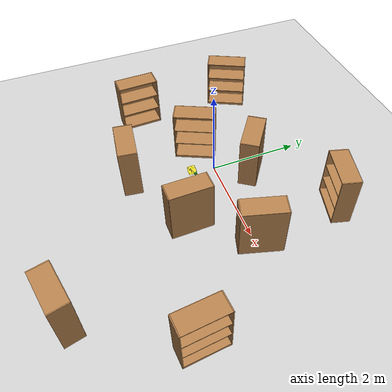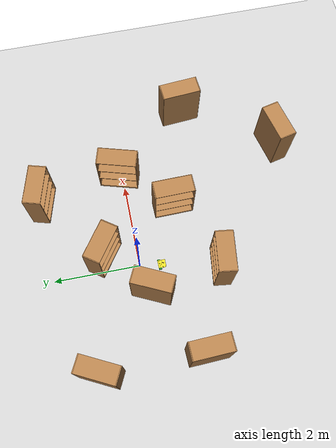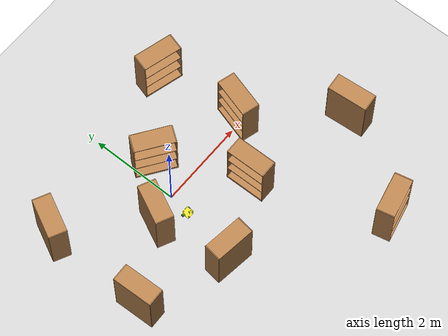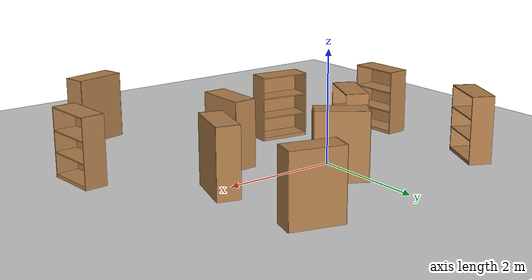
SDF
<sdf version="1.7">
 <world name="default">
  <light name="sun" type="directional">
   <pose>0 0 10 0 -0 0</pose>
   <diffuse>0.8 0.8 0.8 1</diffuse>
   <specular>0.2 0.2 0.2 1</specular>
   <attenuation>
    <range>1000</range>
    <constant>0.9</constant>
    <linear>0.01</linear>
    <quadratic>0.001</quadratic>
   </attenuation>
   <direction>-0.5 0.1 -0.9</direction>
   <spot><inner_angle>0</inner_angle><outer_angle>0</outer_angle><falloff>0</falloff></spot>
  </light>
  <model name="ground_plane">
   <static>1</static>
   <link name="link">
    <collision name="collision">
     <geometry><plane><normal>0 0 1</normal><size>100 100</size></plane></geometry>
     <surface>
      <contact><collide_bitmask>65535</collide_bitmask></contact>
      <friction><ode><mu>100</mu><mu2>50</mu2></ode></friction>
     </surface>
    </collision>
    <visual name="visual">
     <cast_shadows>0</cast_shadows>
     <geometry><plane><normal>0 0 1</normal><size>100 100</size></plane></geometry>
     <material>
      <script><uri>file://media/materials/scripts/gazebo.material</uri><name>Gazebo/Grey</name></script>
     </material>
    </visual>
   </link>
  </model>
  <gravity>0 0 -9.8</gravity>
  <magnetic_field>6e-06 2.3e-05 -4.2e-05</magnetic_field>
  <atmosphere type="adiabatic"/>
  <physics type="ode">
   <max_step_size>0.001</max_step_size>
   <real_time_factor>1</real_time_factor>
   <real_time_update_rate>1000</real_time_update_rate>
  </physics>
  <scene><ambient>0.4 0.4 0.4 1</ambient><background>0.7 0.7 0.7 1</background><shadows>1</shadows></scene>
  <spherical_coordinates>
   <surface_model>EARTH_WGS84</surface_model>
   <latitude_deg>0</latitude_deg>
   <longitude_deg>0</longitude_deg>
   <elevation>0</elevation>
   <heading_deg>0</heading_deg>
  </spherical_coordinates>
  <model name="rham_bot">
   <link name="basefoot_link">
    <inertial>
     <pose>-0.009156 -5.5e-05 0.051296 0 -0 0</pose>
     <mass>0.41862</mass>
     <inertia>
      <ixx>0.000661505</ixx>
      <ixy>2.67715e-06</ixy>
      <ixz>-5.01286e-05</ixz>
      <iyy>0.000750471</iyy>
      <iyz>-2.76036e-06</iyz>
      <izz>0.00106946</izz>
     </inertia>
    </inertial>
    <collision name="basefoot_link_collision">
     <geometry>
      <mesh><scale>1 1 1</scale><uri>/home/skr/ROS_lesson/src/rham_description/meshes/basefoot_link.STL</uri></mesh>
     </geometry>
     <surface><friction><ode><mu>1.5</mu><mu2>1.5</mu2></ode></friction></surface>
    </collision>
    <collision name="basefoot_link_fixed_joint_lump__caster_link_collision_1">
     <pose>0.054892 0 -0.01425 0 -0 0</pose>
     <geometry>
      <mesh><scale>1 1 1</scale><uri>/home/skr/ROS_lesson/src/rham_description/meshes/caster_link.STL</uri></mesh>
     </geometry>
     <surface><friction><ode><mu>0.001</mu><mu2>0.001</mu2></ode></friction></surface>
    </collision>
    <collision name="basefoot_link_fixed_joint_lump__laser_link_collision_2">
     <pose>-0.000108 0 0.0976 0 -0 0</pose>
     <geometry>
      <mesh><scale>1 1 1</scale><uri>/home/skr/ROS_lesson/src/rham_description/meshes/laser_link.STL</uri></mesh>
     </geometry>
     <surface><friction><ode><mu>1.5</mu><mu2>1.5</mu2></ode></friction></surface>
    </collision>
    <visual name="basefoot_link_visual">
     <geometry>
      <mesh><scale>1 1 1</scale><uri>/home/skr/ROS_lesson/src/rham_description/meshes/basefoot_link.STL</uri></mesh>
     </geometry>
     <material>
      <script><name>Gazebo/Yellow</name><uri>file://media/materials/scripts/gazebo.material</uri></script>
     </material>
    </visual>
    <visual name="basefoot_link_fixed_joint_lump__caster_link_visual_1">
     <pose>0.054892 0 -0.01425 0 -0 0</pose>
     <geometry>
      <mesh><scale>1 1 1</scale><uri>/home/skr/ROS_lesson/src/rham_description/meshes/caster_link.STL</uri></mesh>
     </geometry>
     <material>
      <script><name>Gazebo/Green</name><uri>file://media/materials/scripts/gazebo.material</uri></script>
     </material>
    </visual>
    <visual name="basefoot_link_fixed_joint_lump__laser_link_visual_2">
     <pose>-0.000108 0 0.0976 0 -0 0</pose>
     <geometry>
      <mesh><scale>1 1 1</scale><uri>/home/skr/ROS_lesson/src/rham_description/meshes/laser_link.STL</uri></mesh>
     </geometry>
     <material>
      <script><name>Gazebo/Black</name><uri>file://media/materials/scripts/gazebo.material</uri></script>
     </material>
    </visual>
    <self_collide>1</self_collide>
   </link>
   <joint name="left_motor_link_jt" type="revolute">
    <pose relative_to="basefoot_link">-0.051108 0.117 0.016 0 -0 0</pose>
    <parent>basefoot_link</parent>
    <child>left_motor_link</child>
    <axis>
     <xyz>0 1 0</xyz>
     <limit><lower>-1e+16</lower><upper>1e+16</upper></limit>
     <dynamics><spring_reference>0</spring_reference><spring_stiffness>0</spring_stiffness></dynamics>
    </axis>
   </joint>
   <link name="left_motor_link">
    <pose relative_to="left_motor_link_jt">0 0 0 0 -0 0</pose>
    <inertial>
     <pose>-0 -0.013635 0 0 -0 0</pose>
     <mass>0.0986209</mass>
     <inertia>
      <ixx>3.46255e-05</ixx>
      <ixy>8.0837e-23</ixy>
      <ixz>4.95402e-22</ixz>
      <iyy>5.66786e-05</iyy>
      <iyz>9.10505e-22</iyz>
      <izz>3.46255e-05</izz>
     </inertia>
    </inertial>
    <collision name="left_motor_link_collision">
     <geometry>
      <mesh>
       <scale>1 1 1</scale>
       <uri>/home/skr/ROS_lesson/src/rham_description/meshes/left_motor_link.STL</uri>
      </mesh>
     </geometry>
     <surface><friction><ode><mu>1.5</mu><mu2>1.5</mu2></ode></friction></surface>
    </collision>
    <visual name="left_motor_link_visual">
     <geometry>
      <mesh>
       <scale>1 1 1</scale>
       <uri>/home/skr/ROS_lesson/src/rham_description/meshes/left_motor_link.STL</uri>
      </mesh>
     </geometry>
     <material>
      <script><name>Gazebo/Green</name><uri>file://media/materials/scripts/gazebo.material</uri></script>
     </material>
    </visual>
    <self_collide>1</self_collide>
   </link>
   <joint name="right_motor_link_jt" type="revolute">
    <pose relative_to="basefoot_link">-0.051108 -0.117 0.016 0 -0 0</pose>
    <parent>basefoot_link</parent>
    <child>right_motor_link</child>
    <axis>
     <xyz>0 1 0</xyz>
     <limit><lower>-1e+16</lower><upper>1e+16</upper></limit>
     <dynamics><spring_reference>0</spring_reference><spring_stiffness>0</spring_stiffness></dynamics>
    </axis>
   </joint>
   <link name="right_motor_link">
    <pose relative_to="right_motor_link_jt">0 0 0 0 -0 0</pose>
    <inertial>
     <pose>0 0.013635 0 0 -0 0</pose>
     <mass>0.0986209</mass>
     <inertia>
      <ixx>3.46255e-05</ixx>
      <ixy>-9.29433e-22</ixy>
      <ixz>2.27227e-22</ixz>
      <iyy>5.66786e-05</iyy>
      <iyz>4.9873e-23</iyz>
      <izz>3.46255e-05</izz>
     </inertia>
    </inertial>
    <collision name="right_motor_link_collision">
     <geometry>
      <mesh>
       <scale>1 1 1</scale>
       <uri>/home/skr/ROS_lesson/src/rham_description/meshes/right_motor_link.STL</uri>
      </mesh>
     </geometry>
     <surface><friction><ode><mu>1.5</mu><mu2>1.5</mu2></ode></friction></surface>
    </collision>
    <visual name="right_motor_link_visual">
     <geometry>
      <mesh>
       <scale>1 1 1</scale>
       <uri>/home/skr/ROS_lesson/src/rham_description/meshes/right_motor_link.STL</uri>
      </mesh>
     </geometry>
     <material>
      <script><name>Gazebo/Green</name><uri>file://media/materials/scripts/gazebo.material</uri></script>
     </material>
    </visual>
    <self_collide>1</self_collide>
   </link>
   <plugin name="gazebo_ros_control" filename="libgazebo_ros_control.so">
    <robotNamespace>/rham_bot</robotNamespace>
   </plugin>
   <plugin name="differential_drive_controller" filename="libgazebo_ros_diff_drive.so">
    <leftJoint>left_motor_link_jt</leftJoint>
    <rightJoint>right_motor_link_jt</rightJoint>
    <wheelSeparation>0.234</wheelSeparation>
    <wheelDiameter>0.065</wheelDiameter>
    <wheelAcceleration>1.0</wheelAcceleration>
    <max_wheel_acceleration>10.0</max_wheel_acceleration>
    <wheelTorque>3</wheelTorque>
    <commandTopic>cmd_vel</commandTopic>
    <odometryTopic>odom</odometryTopic>
    <odometryFrame>odom</odometryFrame>
    <publishOdom>1</publishOdom>
    <robotBaseFrame>basefoot_link</robotBaseFrame>
    <odometrySource>1</odometrySource>
    <publishWheelTF>1</publishWheelTF>
    <publishWheelJointState>1</publishWheelJointState>
    <robotNamespace>/</robotNamespace>
   </plugin>
   <frame name="caster_link_jt" attached_to="basefoot_link"><pose>0.054892 0 -0.01425 0 -0 0</pose></frame>
   <frame name="caster_link" attached_to="caster_link_jt"/>
   <frame name="laser_link_jt" attached_to="basefoot_link"><pose>-0.000108 0 0.0976 0 -0 0</pose></frame>
   <frame name="laser_link" attached_to="laser_link_jt"/>
   <pose>-0.075974 -0.504436 0.017996 -3.1e-05 -3e-05 -1.55445</pose>
  </model>
  <model name="bookshelf">
   <static>1</static>
   <link name="link">
    <inertial><mass>1</mass></inertial>
    <collision name="back">
     <pose>0 0.005 0.6 0 -0 0</pose>
     <geometry><box><size>0.9 0.01 1.2</size></box></geometry>
    </collision>
    <visual name="visual1">
     <pose>0 0.005 0.6 0 -0 0</pose>
     <geometry><box><size>0.9 0.01 1.2</size></box></geometry>
     <material>
      <script><uri>file://media/materials/scripts/gazebo.material</uri><name>Gazebo/Wood</name></script>
     </material>
    </visual>
    <collision name="left_side">
     <pose>0.45 -0.195 0.6 0 -0 0</pose>
     <geometry><box><size>0.02 0.4 1.2</size></box></geometry>
    </collision>
    <visual name="visual2">
     <pose>0.45 -0.195 0.6 0 -0 0</pose>
     <geometry><box><size>0.02 0.4 1.2</size></box></geometry>
     <material>
      <script><uri>file://media/materials/scripts/gazebo.material</uri><name>Gazebo/Wood</name></script>
     </material>
    </visual>
    <collision name="right_side">
     <pose>-0.45 -0.195 0.6 0 -0 0</pose>
     <geometry><box><size>0.02 0.4 1.2</size></box></geometry>
    </collision>
    <visual name="visual3">
     <pose>-0.45 -0.195 0.6 0 -0 0</pose>
     <geometry><box><size>0.02 0.4 1.2</size></box></geometry>
     <material>
      <script><uri>file://media/materials/scripts/gazebo.material</uri><name>Gazebo/Wood</name></script>
     </material>
    </visual>
    <collision name="bottom">
     <pose>0 -0.195 0.03 0 -0 0</pose>
     <geometry><box><size>0.88 0.4 0.06</size></box></geometry>
    </collision>
    <visual name="visual4">
     <pose>0 -0.195 0.03 0 -0 0</pose>
     <geometry><box><size>0.88 0.4 0.06</size></box></geometry>
     <material>
      <script><uri>file://media/materials/scripts/gazebo.material</uri><name>Gazebo/Wood</name></script>
     </material>
    </visual>
    <collision name="top">
     <pose>0 -0.195 1.19 0 -0 0</pose>
     <geometry><box><size>0.88 0.4 0.02</size></box></geometry>
    </collision>
    <visual name="visual5">
     <pose>0 -0.195 1.19 0 -0 0</pose>
     <geometry><box><size>0.88 0.4 0.02</size></box></geometry>
     <material>
      <script><uri>file://media/materials/scripts/gazebo.material</uri><name>Gazebo/Wood</name></script>
     </material>
    </visual>
    <collision name="low_shelf">
     <pose>0 -0.195 0.43 0 -0 0</pose>
     <geometry><box><size>0.88 0.4 0.02</size></box></geometry>
    </collision>
    <visual name="visual6">
     <pose>0 -0.195 0.43 0 -0 0</pose>
     <geometry><box><size>0.88 0.4 0.02</size></box></geometry>
     <material>
      <script><uri>file://media/materials/scripts/gazebo.material</uri><name>Gazebo/Wood</name></script>
     </material>
    </visual>
    <collision name="high_shelf">
     <pose>0 -0.195 0.8 0 -0 0</pose>
     <geometry><box><size>0.88 0.4 0.02</size></box></geometry>
    </collision>
    <visual name="visual7">
     <pose>0 -0.195 0.8 0 -0 0</pose>
     <geometry><box><size>0.88 0.4 0.02</size></box></geometry>
     <material>
      <script><uri>file://media/materials/scripts/gazebo.material</uri><name>Gazebo/Wood</name></script>
     </material>
    </visual>
   </link>
   <pose>-0.847795 -0.101432 0 0 -0 1.11954</pose>
  </model>
  <model name="bookshelf_0">
   <static>1</static>
   <link name="link">
    <inertial><mass>1</mass></inertial>
    <collision name="back">
     <pose>0 0.005 0.6 0 -0 0</pose>
     <geometry><box><size>0.9 0.01 1.2</size></box></geometry>
    </collision>
    <visual name="visual1">
     <pose>0 0.005 0.6 0 -0 0</pose>
     <geometry><box><size>0.9 0.01 1.2</size></box></geometry>
     <material>
      <script><uri>file://media/materials/scripts/gazebo.material</uri><name>Gazebo/Wood</name></script>
     </material>
    </visual>
    <collision name="left_side">
     <pose>0.45 -0.195 0.6 0 -0 0</pose>
     <geometry><box><size>0.02 0.4 1.2</size></box></geometry>
    </collision>
    <visual name="visual2">
     <pose>0.45 -0.195 0.6 0 -0 0</pose>
     <geometry><box><size>0.02 0.4 1.2</size></box></geometry>
     <material>
      <script><uri>file://media/materials/scripts/gazebo.material</uri><name>Gazebo/Wood</name></script>
     </material>
    </visual>
    <collision name="right_side">
     <pose>-0.45 -0.195 0.6 0 -0 0</pose>
     <geometry><box><size>0.02 0.4 1.2</size></box></geometry>
    </collision>
    <visual name="visual3">
     <pose>-0.45 -0.195 0.6 0 -0 0</pose>
     <geometry><box><size>0.02 0.4 1.2</size></box></geometry>
     <material>
      <script><uri>file://media/materials/scripts/gazebo.material</uri><name>Gazebo/Wood</name></script>
     </material>
    </visual>
    <collision name="bottom">
     <pose>0 -0.195 0.03 0 -0 0</pose>
     <geometry><box><size>0.88 0.4 0.06</size></box></geometry>
    </collision>
    <visual name="visual4">
     <pose>0 -0.195 0.03 0 -0 0</pose>
     <geometry><box><size>0.88 0.4 0.06</size></box></geometry>
     <material>
      <script><uri>file://media/materials/scripts/gazebo.material</uri><name>Gazebo/Wood</name></script>
     </material>
    </visual>
    <collision name="top">
     <pose>0 -0.195 1.19 0 -0 0</pose>
     <geometry><box><size>0.88 0.4 0.02</size></box></geometry>
    </collision>
    <visual name="visual5">
     <pose>0 -0.195 1.19 0 -0 0</pose>
     <geometry><box><size>0.88 0.4 0.02</size></box></geometry>
     <material>
      <script><uri>file://media/materials/scripts/gazebo.material</uri><name>Gazebo/Wood</name></script>
     </material>
    </visual>
    <collision name="low_shelf">
     <pose>0 -0.195 0.43 0 -0 0</pose>
     <geometry><box><size>0.88 0.4 0.02</size></box></geometry>
    </collision>
    <visual name="visual6">
     <pose>0 -0.195 0.43 0 -0 0</pose>
     <geometry><box><size>0.88 0.4 0.02</size></box></geometry>
     <material>
      <script><uri>file://media/materials/scripts/gazebo.material</uri><name>Gazebo/Wood</name></script>
     </material>
    </visual>
    <collision name="high_shelf">
     <pose>0 -0.195 0.8 0 -0 0</pose>
     <geometry><box><size>0.88 0.4 0.02</size></box></geometry>
    </collision>
    <visual name="visual7">
     <pose>0 -0.195 0.8 0 -0 0</pose>
     <geometry><box><size>0.88 0.4 0.02</size></box></geometry>
     <material>
      <script><uri>file://media/materials/scripts/gazebo.material</uri><name>Gazebo/Wood</name></script>
     </material>
    </visual>
   </link>
   <pose>0.47207 0.914238 0 0 0 -0.616678</pose>
  </model>
  <model name="bookshelf_1">
   <static>1</static>
   <link name="link">
    <inertial><mass>1</mass></inertial>
    <collision name="back">
     <pose>0 0.005 0.6 0 -0 0</pose>
     <geometry><box><size>0.9 0.01 1.2</size></box></geometry>
    </collision>
    <visual name="visual1">
     <pose>0 0.005 0.6 0 -0 0</pose>
     <geometry><box><size>0.9 0.01 1.2</size></box></geometry>
     <material>
      <script><uri>file://media/materials/scripts/gazebo.material</uri><name>Gazebo/Wood</name></script>
     </material>
    </visual>
    <collision name="left_side">
     <pose>0.45 -0.195 0.6 0 -0 0</pose>
     <geometry><box><size>0.02 0.4 1.2</size></box></geometry>
    </collision>
    <visual name="visual2">
     <pose>0.45 -0.195 0.6 0 -0 0</pose>
     <geometry><box><size>0.02 0.4 1.2</size></box></geometry>
     <material>
      <script><uri>file://media/materials/scripts/gazebo.material</uri><name>Gazebo/Wood</name></script>
     </material>
    </visual>
    <collision name="right_side">
     <pose>-0.45 -0.195 0.6 0 -0 0</pose>
     <geometry><box><size>0.02 0.4 1.2</size></box></geometry>
    </collision>
    <visual name="visual3">
     <pose>-0.45 -0.195 0.6 0 -0 0</pose>
     <geometry><box><size>0.02 0.4 1.2</size></box></geometry>
     <material>
      <script><uri>file://media/materials/scripts/gazebo.material</uri><name>Gazebo/Wood</name></script>
     </material>
    </visual>
    <collision name="bottom">
     <pose>0 -0.195 0.03 0 -0 0</pose>
     <geometry><box><size>0.88 0.4 0.06</size></box></geometry>
    </collision>
    <visual name="visual4">
     <pose>0 -0.195 0.03 0 -0 0</pose>
     <geometry><box><size>0.88 0.4 0.06</size></box></geometry>
     <material>
      <script><uri>file://media/materials/scripts/gazebo.material</uri><name>Gazebo/Wood</name></script>
     </material>
    </visual>
    <collision name="top">
     <pose>0 -0.195 1.19 0 -0 0</pose>
     <geometry><box><size>0.88 0.4 0.02</size></box></geometry>
    </collision>
    <visual name="visual5">
     <pose>0 -0.195 1.19 0 -0 0</pose>
     <geometry><box><size>0.88 0.4 0.02</size></box></geometry>
     <material>
      <script><uri>file://media/materials/scripts/gazebo.material</uri><name>Gazebo/Wood</name></script>
     </material>
    </visual>
    <collision name="low_shelf">
     <pose>0 -0.195 0.43 0 -0 0</pose>
     <geometry><box><size>0.88 0.4 0.02</size></box></geometry>
    </collision>
    <visual name="visual6">
     <pose>0 -0.195 0.43 0 -0 0</pose>
     <geometry><box><size>0.88 0.4 0.02</size></box></geometry>
     <material>
      <script><uri>file://media/materials/scripts/gazebo.material</uri><name>Gazebo/Wood</name></script>
     </material>
    </visual>
    <collision name="high_shelf">
     <pose>0 -0.195 0.8 0 -0 0</pose>
     <geometry><box><size>0.88 0.4 0.02</size></box></geometry>
    </collision>
    <visual name="visual7">
     <pose>0 -0.195 0.8 0 -0 0</pose>
     <geometry><box><size>0.88 0.4 0.02</size></box></geometry>
     <material>
      <script><uri>file://media/materials/scripts/gazebo.material</uri><name>Gazebo/Wood</name></script>
     </material>
    </visual>
   </link>
   <pose>2.44896 0.011961 0 0 0 -1.85645</pose>
  </model>
  <model name="bookshelf_2">
   <static>1</static>
   <link name="link">
    <inertial><mass>1</mass></inertial>
    <collision name="back">
     <pose>0 0.005 0.6 0 -0 0</pose>
     <geometry><box><size>0.9 0.01 1.2</size></box></geometry>
    </collision>
    <visual name="visual1">
     <pose>0 0.005 0.6 0 -0 0</pose>
     <geometry><box><size>0.9 0.01 1.2</size></box></geometry>
     <material>
      <script><uri>file://media/materials/scripts/gazebo.material</uri><name>Gazebo/Wood</name></script>
     </material>
    </visual>
    <collision name="left_side">
     <pose>0.45 -0.195 0.6 0 -0 0</pose>
     <geometry><box><size>0.02 0.4 1.2</size></box></geometry>
    </collision>
    <visual name="visual2">
     <pose>0.45 -0.195 0.6 0 -0 0</pose>
     <geometry><box><size>0.02 0.4 1.2</size></box></geometry>
     <material>
      <script><uri>file://media/materials/scripts/gazebo.material</uri><name>Gazebo/Wood</name></script>
     </material>
    </visual>
    <collision name="right_side">
     <pose>-0.45 -0.195 0.6 0 -0 0</pose>
     <geometry><box><size>0.02 0.4 1.2</size></box></geometry>
    </collision>
    <visual name="visual3">
     <pose>-0.45 -0.195 0.6 0 -0 0</pose>
     <geometry><box><size>0.02 0.4 1.2</size></box></geometry>
     <material>
      <script><uri>file://media/materials/scripts/gazebo.material</uri><name>Gazebo/Wood</name></script>
     </material>
    </visual>
    <collision name="bottom">
     <pose>0 -0.195 0.03 0 -0 0</pose>
     <geometry><box><size>0.88 0.4 0.06</size></box></geometry>
    </collision>
    <visual name="visual4">
     <pose>0 -0.195 0.03 0 -0 0</pose>
     <geometry><box><size>0.88 0.4 0.06</size></box></geometry>
     <material>
      <script><uri>file://media/materials/scripts/gazebo.material</uri><name>Gazebo/Wood</name></script>
     </material>
    </visual>
    <collision name="top">
     <pose>0 -0.195 1.19 0 -0 0</pose>
     <geometry><box><size>0.88 0.4 0.02</size></box></geometry>
    </collision>
    <visual name="visual5">
     <pose>0 -0.195 1.19 0 -0 0</pose>
     <geometry><box><size>0.88 0.4 0.02</size></box></geometry>
     <material>
      <script><uri>file://media/materials/scripts/gazebo.material</uri><name>Gazebo/Wood</name></script>
     </material>
    </visual>
    <collision name="low_shelf">
     <pose>0 -0.195 0.43 0 -0 0</pose>
     <geometry><box><size>0.88 0.4 0.02</size></box></geometry>
    </collision>
    <visual name="visual6">
     <pose>0 -0.195 0.43 0 -0 0</pose>
     <geometry><box><size>0.88 0.4 0.02</size></box></geometry>
     <material>
      <script><uri>file://media/materials/scripts/gazebo.material</uri><name>Gazebo/Wood</name></script>
     </material>
    </visual>
    <collision name="high_shelf">
     <pose>0 -0.195 0.8 0 -0 0</pose>
     <geometry><box><size>0.88 0.4 0.02</size></box></geometry>
    </collision>
    <visual name="visual7">
     <pose>0 -0.195 0.8 0 -0 0</pose>
     <geometry><box><size>0.88 0.4 0.02</size></box></geometry>
     <material>
      <script><uri>file://media/materials/scripts/gazebo.material</uri><name>Gazebo/Wood</name></script>
     </material>
    </visual>
   </link>
   <pose>-0.402325 -2.02315 0 0 -0 3.00617</pose>
  </model>
  <model name="bookshelf_3">
   <static>1</static>
   <link name="link">
    <inertial><mass>1</mass></inertial>
    <collision name="back">
     <pose>0 0.005 0.6 0 -0 0</pose>
     <geometry><box><size>0.9 0.01 1.2</size></box></geometry>
    </collision>
    <visual name="visual1">
     <pose>0 0.005 0.6 0 -0 0</pose>
     <geometry><box><size>0.9 0.01 1.2</size></box></geometry>
     <material>
      <script><uri>file://media/materials/scripts/gazebo.material</uri><name>Gazebo/Wood</name></script>
     </material>
    </visual>
    <collision name="left_side">
     <pose>0.45 -0.195 0.6 0 -0 0</pose>
     <geometry><box><size>0.02 0.4 1.2</size></box></geometry>
    </collision>
    <visual name="visual2">
     <pose>0.45 -0.195 0.6 0 -0 0</pose>
     <geometry><box><size>0.02 0.4 1.2</size></box></geometry>
     <material>
      <script><uri>file://media/materials/scripts/gazebo.material</uri><name>Gazebo/Wood</name></script>
     </material>
    </visual>
    <collision name="right_side">
     <pose>-0.45 -0.195 0.6 0 -0 0</pose>
     <geometry><box><size>0.02 0.4 1.2</size></box></geometry>
    </collision>
    <visual name="visual3">
     <pose>-0.45 -0.195 0.6 0 -0 0</pose>
     <geometry><box><size>0.02 0.4 1.2</size></box></geometry>
     <material>
      <script><uri>file://media/materials/scripts/gazebo.material</uri><name>Gazebo/Wood</name></script>
     </material>
    </visual>
    <collision name="bottom">
     <pose>0 -0.195 0.03 0 -0 0</pose>
     <geometry><box><size>0.88 0.4 0.06</size></box></geometry>
    </collision>
    <visual name="visual4">
     <pose>0 -0.195 0.03 0 -0 0</pose>
     <geometry><box><size>0.88 0.4 0.06</size></box></geometry>
     <material>
      <script><uri>file://media/materials/scripts/gazebo.material</uri><name>Gazebo/Wood</name></script>
     </material>
    </visual>
    <collision name="top">
     <pose>0 -0.195 1.19 0 -0 0</pose>
     <geometry><box><size>0.88 0.4 0.02</size></box></geometry>
    </collision>
    <visual name="visual5">
     <pose>0 -0.195 1.19 0 -0 0</pose>
     <geometry><box><size>0.88 0.4 0.02</size></box></geometry>
     <material>
      <script><uri>file://media/materials/scripts/gazebo.material</uri><name>Gazebo/Wood</name></script>
     </material>
    </visual>
    <collision name="low_shelf">
     <pose>0 -0.195 0.43 0 -0 0</pose>
     <geometry><box><size>0.88 0.4 0.02</size></box></geometry>
    </collision>
    <visual name="visual6">
     <pose>0 -0.195 0.43 0 -0 0</pose>
     <geometry><box><size>0.88 0.4 0.02</size></box></geometry>
     <material>
      <script><uri>file://media/materials/scripts/gazebo.material</uri><name>Gazebo/Wood</name></script>
     </material>
    </visual>
    <collision name="high_shelf">
     <pose>0 -0.195 0.8 0 -0 0</pose>
     <geometry><box><size>0.88 0.4 0.02</size></box></geometry>
    </collision>
    <visual name="visual7">
     <pose>0 -0.195 0.8 0 -0 0</pose>
     <geometry><box><size>0.88 0.4 0.02</size></box></geometry>
     <material>
      <script><uri>file://media/materials/scripts/gazebo.material</uri><name>Gazebo/Wood</name></script>
     </material>
    </visual>
   </link>
   <pose>-2.45602 -1.08178 0 0 -0 1.60451</pose>
  </model>
  <model name="bookshelf_4">
   <static>1</static>
   <link name="link">
    <inertial><mass>1</mass></inertial>
    <collision name="back">
     <pose>0 0.005 0.6 0 -0 0</pose>
     <geometry><box><size>0.9 0.01 1.2</size></box></geometry>
    </collision>
    <visual name="visual1">
     <pose>0 0.005 0.6 0 -0 0</pose>
     <geometry><box><size>0.9 0.01 1.2</size></box></geometry>
     <material>
      <script><uri>file://media/materials/scripts/gazebo.material</uri><name>Gazebo/Wood</name></script>
     </material>
    </visual>
    <collision name="left_side">
     <pose>0.45 -0.195 0.6 0 -0 0</pose>
     <geometry><box><size>0.02 0.4 1.2</size></box></geometry>
    </collision>
    <visual name="visual2">
     <pose>0.45 -0.195 0.6 0 -0 0</pose>
     <geometry><box><size>0.02 0.4 1.2</size></box></geometry>
     <material>
      <script><uri>file://media/materials/scripts/gazebo.material</uri><name>Gazebo/Wood</name></script>
     </material>
    </visual>
    <collision name="right_side">
     <pose>-0.45 -0.195 0.6 0 -0 0</pose>
     <geometry><box><size>0.02 0.4 1.2</size></box></geometry>
    </collision>
    <visual name="visual3">
     <pose>-0.45 -0.195 0.6 0 -0 0</pose>
     <geometry><box><size>0.02 0.4 1.2</size></box></geometry>
     <material>
      <script><uri>file://media/materials/scripts/gazebo.material</uri><name>Gazebo/Wood</name></script>
     </material>
    </visual>
    <collision name="bottom">
     <pose>0 -0.195 0.03 0 -0 0</pose>
     <geometry><box><size>0.88 0.4 0.06</size></box></geometry>
    </collision>
    <visual name="visual4">
     <pose>0 -0.195 0.03 0 -0 0</pose>
     <geometry><box><size>0.88 0.4 0.06</size></box></geometry>
     <material>
      <script><uri>file://media/materials/scripts/gazebo.material</uri><name>Gazebo/Wood</name></script>
     </material>
    </visual>
    <collision name="top">
     <pose>0 -0.195 1.19 0 -0 0</pose>
     <geometry><box><size>0.88 0.4 0.02</size></box></geometry>
    </collision>
    <visual name="visual5">
     <pose>0 -0.195 1.19 0 -0 0</pose>
     <geometry><box><size>0.88 0.4 0.02</size></box></geometry>
     <material>
      <script><uri>file://media/materials/scripts/gazebo.material</uri><name>Gazebo/Wood</name></script>
     </material>
    </visual>
    <collision name="low_shelf">
     <pose>0 -0.195 0.43 0 -0 0</pose>
     <geometry><box><size>0.88 0.4 0.02</size></box></geometry>
    </collision>
    <visual name="visual6">
     <pose>0 -0.195 0.43 0 -0 0</pose>
     <geometry><box><size>0.88 0.4 0.02</size></box></geometry>
     <material>
      <script><uri>file://media/materials/scripts/gazebo.material</uri><name>Gazebo/Wood</name></script>
     </material>
    </visual>
    <collision name="high_shelf">
     <pose>0 -0.195 0.8 0 -0 0</pose>
     <geometry><box><size>0.88 0.4 0.02</size></box></geometry>
    </collision>
    <visual name="visual7">
     <pose>0 -0.195 0.8 0 -0 0</pose>
     <geometry><box><size>0.88 0.4 0.02</size></box></geometry>
     <material>
      <script><uri>file://media/materials/scripts/gazebo.material</uri><name>Gazebo/Wood</name></script>
     </material>
    </visual>
   </link>
   <pose>3.5784 -1.73459 0 0 -0 1.65135</pose>
  </model>
  <model name="bookshelf_5">
   <static>1</static>
   <link name="link">
    <inertial><mass>1</mass></inertial>
    <collision name="back">
     <pose>0 0.005 0.6 0 -0 0</pose>
     <geometry><box><size>0.9 0.01 1.2</size></box></geometry>
    </collision>
    <visual name="visual1">
     <pose>0 0.005 0.6 0 -0 0</pose>
     <geometry><box><size>0.9 0.01 1.2</size></box></geometry>
     <material>
      <script><uri>file://media/materials/scripts/gazebo.material</uri><name>Gazebo/Wood</name></script>
     </material>
    </visual>
    <collision name="left_side">
     <pose>0.45 -0.195 0.6 0 -0 0</pose>
     <geometry><box><size>0.02 0.4 1.2</size></box></geometry>
    </collision>
    <visual name="visual2">
     <pose>0.45 -0.195 0.6 0 -0 0</pose>
     <geometry><box><size>0.02 0.4 1.2</size></box></geometry>
     <material>
      <script><uri>file://media/materials/scripts/gazebo.material</uri><name>Gazebo/Wood</name></script>
     </material>
    </visual>
    <collision name="right_side">
     <pose>-0.45 -0.195 0.6 0 -0 0</pose>
     <geometry><box><size>0.02 0.4 1.2</size></box></geometry>
    </collision>
    <visual name="visual3">
     <pose>-0.45 -0.195 0.6 0 -0 0</pose>
     <geometry><box><size>0.02 0.4 1.2</size></box></geometry>
     <material>
      <script><uri>file://media/materials/scripts/gazebo.material</uri><name>Gazebo/Wood</name></script>
     </material>
    </visual>
    <collision name="bottom">
     <pose>0 -0.195 0.03 0 -0 0</pose>
     <geometry><box><size>0.88 0.4 0.06</size></box></geometry>
    </collision>
    <visual name="visual4">
     <pose>0 -0.195 0.03 0 -0 0</pose>
     <geometry><box><size>0.88 0.4 0.06</size></box></geometry>
     <material>
      <script><uri>file://media/materials/scripts/gazebo.material</uri><name>Gazebo/Wood</name></script>
     </material>
    </visual>
    <collision name="top">
     <pose>0 -0.195 1.19 0 -0 0</pose>
     <geometry><box><size>0.88 0.4 0.02</size></box></geometry>
    </collision>
    <visual name="visual5">
     <pose>0 -0.195 1.19 0 -0 0</pose>
     <geometry><box><size>0.88 0.4 0.02</size></box></geometry>
     <material>
      <script><uri>file://media/materials/scripts/gazebo.material</uri><name>Gazebo/Wood</name></script>
     </material>
    </visual>
    <collision name="low_shelf">
     <pose>0 -0.195 0.43 0 -0 0</pose>
     <geometry><box><size>0.88 0.4 0.02</size></box></geometry>
    </collision>
    <visual name="visual6">
     <pose>0 -0.195 0.43 0 -0 0</pose>
     <geometry><box><size>0.88 0.4 0.02</size></box></geometry>
     <material>
      <script><uri>file://media/materials/scripts/gazebo.material</uri><name>Gazebo/Wood</name></script>
     </material>
    </visual>
    <collision name="high_shelf">
     <pose>0 -0.195 0.8 0 -0 0</pose>
     <geometry><box><size>0.88 0.4 0.02</size></box></geometry>
    </collision>
    <visual name="visual7">
     <pose>0 -0.195 0.8 0 -0 0</pose>
     <geometry><box><size>0.88 0.4 0.02</size></box></geometry>
     <material>
      <script><uri>file://media/materials/scripts/gazebo.material</uri><name>Gazebo/Wood</name></script>
     </material>
    </visual>
   </link>
   <pose>2.41883 -3.60826 0 0 -0 0.220935</pose>
  </model>
  <model name="bookshelf_6">
   <static>1</static>
   <link name="link">
    <inertial><mass>1</mass></inertial>
    <collision name="back">
     <pose>0 0.005 0.6 0 -0 0</pose>
     <geometry><box><size>0.9 0.01 1.2</size></box></geometry>
    </collision>
    <visual name="visual1">
     <pose>0 0.005 0.6 0 -0 0</pose>
     <geometry><box><size>0.9 0.01 1.2</size></box></geometry>
     <material>
      <script><uri>file://media/materials/scripts/gazebo.material</uri><name>Gazebo/Wood</name></script>
     </material>
    </visual>
    <collision name="left_side">
     <pose>0.45 -0.195 0.6 0 -0 0</pose>
     <geometry><box><size>0.02 0.4 1.2</size></box></geometry>
    </collision>
    <visual name="visual2">
     <pose>0.45 -0.195 0.6 0 -0 0</pose>
     <geometry><box><size>0.02 0.4 1.2</size></box></geometry>
     <material>
      <script><uri>file://media/materials/scripts/gazebo.material</uri><name>Gazebo/Wood</name></script>
     </material>
    </visual>
    <collision name="right_side">
     <pose>-0.45 -0.195 0.6 0 -0 0</pose>
     <geometry><box><size>0.02 0.4 1.2</size></box></geometry>
    </collision>
    <visual name="visual3">
     <pose>-0.45 -0.195 0.6 0 -0 0</pose>
     <geometry><box><size>0.02 0.4 1.2</size></box></geometry>
     <material>
      <script><uri>file://media/materials/scripts/gazebo.material</uri><name>Gazebo/Wood</name></script>
     </material>
    </visual>
    <collision name="bottom">
     <pose>0 -0.195 0.03 0 -0 0</pose>
     <geometry><box><size>0.88 0.4 0.06</size></box></geometry>
    </collision>
    <visual name="visual4">
     <pose>0 -0.195 0.03 0 -0 0</pose>
     <geometry><box><size>0.88 0.4 0.06</size></box></geometry>
     <material>
      <script><uri>file://media/materials/scripts/gazebo.material</uri><name>Gazebo/Wood</name></script>
     </material>
    </visual>
    <collision name="top">
     <pose>0 -0.195 1.19 0 -0 0</pose>
     <geometry><box><size>0.88 0.4 0.02</size></box></geometry>
    </collision>
    <visual name="visual5">
     <pose>0 -0.195 1.19 0 -0 0</pose>
     <geometry><box><size>0.88 0.4 0.02</size></box></geometry>
     <material>
      <script><uri>file://media/materials/scripts/gazebo.material</uri><name>Gazebo/Wood</name></script>
     </material>
    </visual>
    <collision name="low_shelf">
     <pose>0 -0.195 0.43 0 -0 0</pose>
     <geometry><box><size>0.88 0.4 0.02</size></box></geometry>
    </collision>
    <visual name="visual6">
     <pose>0 -0.195 0.43 0 -0 0</pose>
     <geometry><box><size>0.88 0.4 0.02</size></box></geometry>
     <material>
      <script><uri>file://media/materials/scripts/gazebo.material</uri><name>Gazebo/Wood</name></script>
     </material>
    </visual>
    <collision name="high_shelf">
     <pose>0 -0.195 0.8 0 -0 0</pose>
     <geometry><box><size>0.88 0.4 0.02</size></box></geometry>
    </collision>
    <visual name="visual7">
     <pose>0 -0.195 0.8 0 -0 0</pose>
     <geometry><box><size>0.88 0.4 0.02</size></box></geometry>
     <material>
      <script><uri>file://media/materials/scripts/gazebo.material</uri><name>Gazebo/Wood</name></script>
     </material>
    </visual>
   </link>
   <pose>1.49385 -1.04309 0 0 0 -1.55743</pose>
  </model>
  <model name="bookshelf_7">
   <static>1</static>
   <link name="link">
    <inertial><mass>1</mass></inertial>
    <collision name="back">
     <pose>0 0.005 0.6 0 -0 0</pose>
     <geometry><box><size>0.9 0.01 1.2</size></box></geometry>
    </collision>
    <visual name="visual1">
     <pose>0 0.005 0.6 0 -0 0</pose>
     <geometry><box><size>0.9 0.01 1.2</size></box></geometry>
     <material>
      <script><uri>file://media/materials/scripts/gazebo.material</uri><name>Gazebo/Wood</name></script>
     </material>
    </visual>
    <collision name="left_side">
     <pose>0.45 -0.195 0.6 0 -0 0</pose>
     <geometry><box><size>0.02 0.4 1.2</size></box></geometry>
    </collision>
    <visual name="visual2">
     <pose>0.45 -0.195 0.6 0 -0 0</pose>
     <geometry><box><size>0.02 0.4 1.2</size></box></geometry>
     <material>
      <script><uri>file://media/materials/scripts/gazebo.material</uri><name>Gazebo/Wood</name></script>
     </material>
    </visual>
    <collision name="right_side">
     <pose>-0.45 -0.195 0.6 0 -0 0</pose>
     <geometry><box><size>0.02 0.4 1.2</size></box></geometry>
    </collision>
    <visual name="visual3">
     <pose>-0.45 -0.195 0.6 0 -0 0</pose>
     <geometry><box><size>0.02 0.4 1.2</size></box></geometry>
     <material>
      <script><uri>file://media/materials/scripts/gazebo.material</uri><name>Gazebo/Wood</name></script>
     </material>
    </visual>
    <collision name="bottom">
     <pose>0 -0.195 0.03 0 -0 0</pose>
     <geometry><box><size>0.88 0.4 0.06</size></box></geometry>
    </collision>
    <visual name="visual4">
     <pose>0 -0.195 0.03 0 -0 0</pose>
     <geometry><box><size>0.88 0.4 0.06</size></box></geometry>
     <material>
      <script><uri>file://media/materials/scripts/gazebo.material</uri><name>Gazebo/Wood</name></script>
     </material>
    </visual>
    <collision name="top">
     <pose>0 -0.195 1.19 0 -0 0</pose>
     <geometry><box><size>0.88 0.4 0.02</size></box></geometry>
    </collision>
    <visual name="visual5">
     <pose>0 -0.195 1.19 0 -0 0</pose>
     <geometry><box><size>0.88 0.4 0.02</size></box></geometry>
     <material>
      <script><uri>file://media/materials/scripts/gazebo.material</uri><name>Gazebo/Wood</name></script>
     </material>
    </visual>
    <collision name="low_shelf">
     <pose>0 -0.195 0.43 0 -0 0</pose>
     <geometry><box><size>0.88 0.4 0.02</size></box></geometry>
    </collision>
    <visual name="visual6">
     <pose>0 -0.195 0.43 0 -0 0</pose>
     <geometry><box><size>0.88 0.4 0.02</size></box></geometry>
     <material>
      <script><uri>file://media/materials/scripts/gazebo.material</uri><name>Gazebo/Wood</name></script>
     </material>
    </visual>
    <collision name="high_shelf">
     <pose>0 -0.195 0.8 0 -0 0</pose>
     <geometry><box><size>0.88 0.4 0.02</size></box></geometry>
    </collision>
    <visual name="visual7">
     <pose>0 -0.195 0.8 0 -0 0</pose>
     <geometry><box><size>0.88 0.4 0.02</size></box></geometry>
     <material>
      <script><uri>file://media/materials/scripts/gazebo.material</uri><name>Gazebo/Wood</name></script>
     </material>
    </visual>
   </link>
   <pose>-2.41828 1.33638 0 0 -0 1.10259</pose>
  </model>
  <model name="bookshelf_8">
   <static>1</static>
   <link name="link">
    <inertial><mass>1</mass></inertial>
    <collision name="back">
     <pose>0 0.005 0.6 0 -0 0</pose>
     <geometry><box><size>0.9 0.01 1.2</size></box></geometry>
    </collision>
    <visual name="visual1">
     <pose>0 0.005 0.6 0 -0 0</pose>
     <geometry><box><size>0.9 0.01 1.2</size></box></geometry>
     <material>
      <script><uri>file://media/materials/scripts/gazebo.material</uri><name>Gazebo/Wood</name></script>
     </material>
    </visual>
    <collision name="left_side">
     <pose>0.45 -0.195 0.6 0 -0 0</pose>
     <geometry><box><size>0.02 0.4 1.2</size></box></geometry>
    </collision>
    <visual name="visual2">
     <pose>0.45 -0.195 0.6 0 -0 0</pose>
     <geometry><box><size>0.02 0.4 1.2</size></box></geometry>
     <material>
      <script><uri>file://media/materials/scripts/gazebo.material</uri><name>Gazebo/Wood</name></script>
     </material>
    </visual>
    <collision name="right_side">
     <pose>-0.45 -0.195 0.6 0 -0 0</pose>
     <geometry><box><size>0.02 0.4 1.2</size></box></geometry>
    </collision>
    <visual name="visual3">
     <pose>-0.45 -0.195 0.6 0 -0 0</pose>
     <geometry><box><size>0.02 0.4 1.2</size></box></geometry>
     <material>
      <script><uri>file://media/materials/scripts/gazebo.material</uri><name>Gazebo/Wood</name></script>
     </material>
    </visual>
    <collision name="bottom">
     <pose>0 -0.195 0.03 0 -0 0</pose>
     <geometry><box><size>0.88 0.4 0.06</size></box></geometry>
    </collision>
    <visual name="visual4">
     <pose>0 -0.195 0.03 0 -0 0</pose>
     <geometry><box><size>0.88 0.4 0.06</size></box></geometry>
     <material>
      <script><uri>file://media/materials/scripts/gazebo.material</uri><name>Gazebo/Wood</name></script>
     </material>
    </visual>
    <collision name="top">
     <pose>0 -0.195 1.19 0 -0 0</pose>
     <geometry><box><size>0.88 0.4 0.02</size></box></geometry>
    </collision>
    <visual name="visual5">
     <pose>0 -0.195 1.19 0 -0 0</pose>
     <geometry><box><size>0.88 0.4 0.02</size></box></geometry>
     <material>
      <script><uri>file://media/materials/scripts/gazebo.material</uri><name>Gazebo/Wood</name></script>
     </material>
    </visual>
    <collision name="low_shelf">
     <pose>0 -0.195 0.43 0 -0 0</pose>
     <geometry><box><size>0.88 0.4 0.02</size></box></geometry>
    </collision>
    <visual name="visual6">
     <pose>0 -0.195 0.43 0 -0 0</pose>
     <geometry><box><size>0.88 0.4 0.02</size></box></geometry>
     <material>
      <script><uri>file://media/materials/scripts/gazebo.material</uri><name>Gazebo/Wood</name></script>
     </material>
    </visual>
    <collision name="high_shelf">
     <pose>0 -0.195 0.8 0 -0 0</pose>
     <geometry><box><size>0.88 0.4 0.02</size></box></geometry>
    </collision>
    <visual name="visual7">
     <pose>0 -0.195 0.8 0 -0 0</pose>
     <geometry><box><size>0.88 0.4 0.02</size></box></geometry>
     <material>
      <script><uri>file://media/materials/scripts/gazebo.material</uri><name>Gazebo/Wood</name></script>
     </material>
    </visual>
   </link>
   <pose>2.0119 2.16396 0 0 0 -0.274631</pose>
  </model>
 </world>
</sdf>
